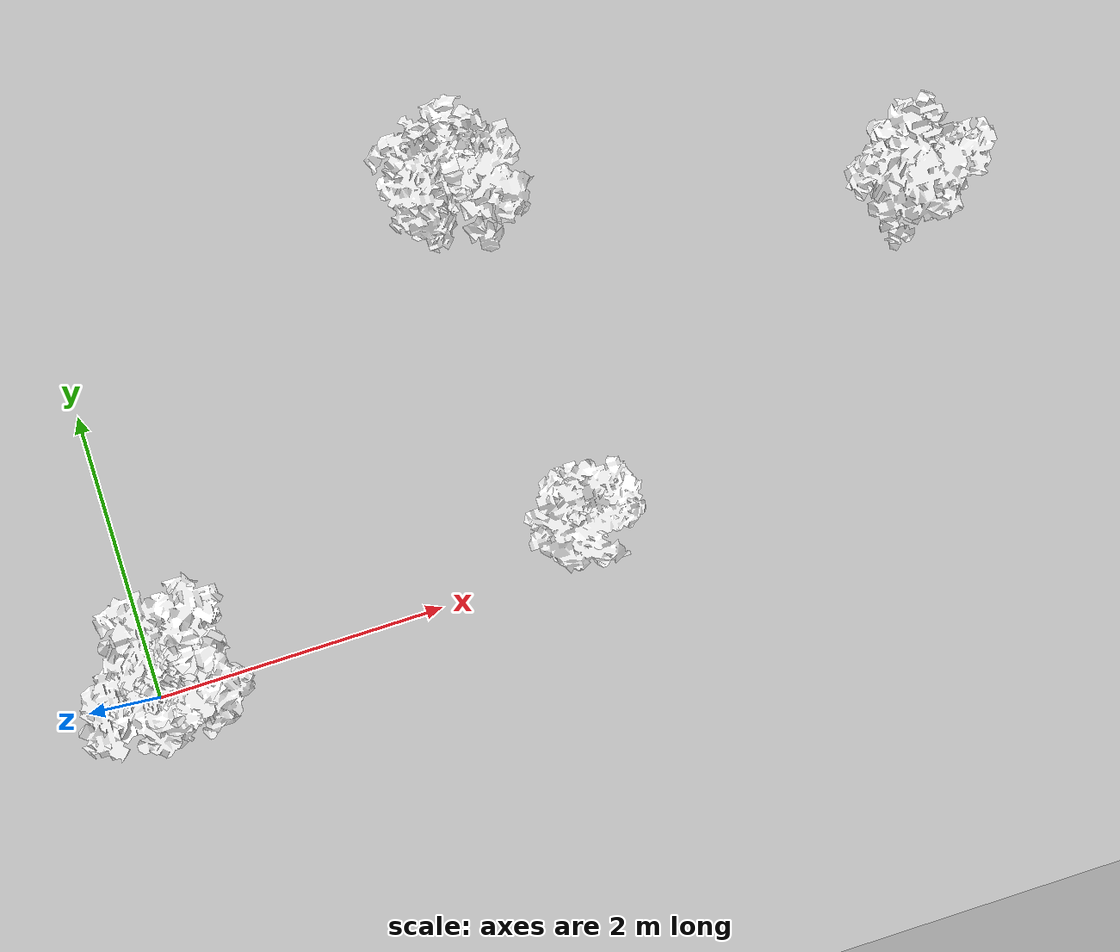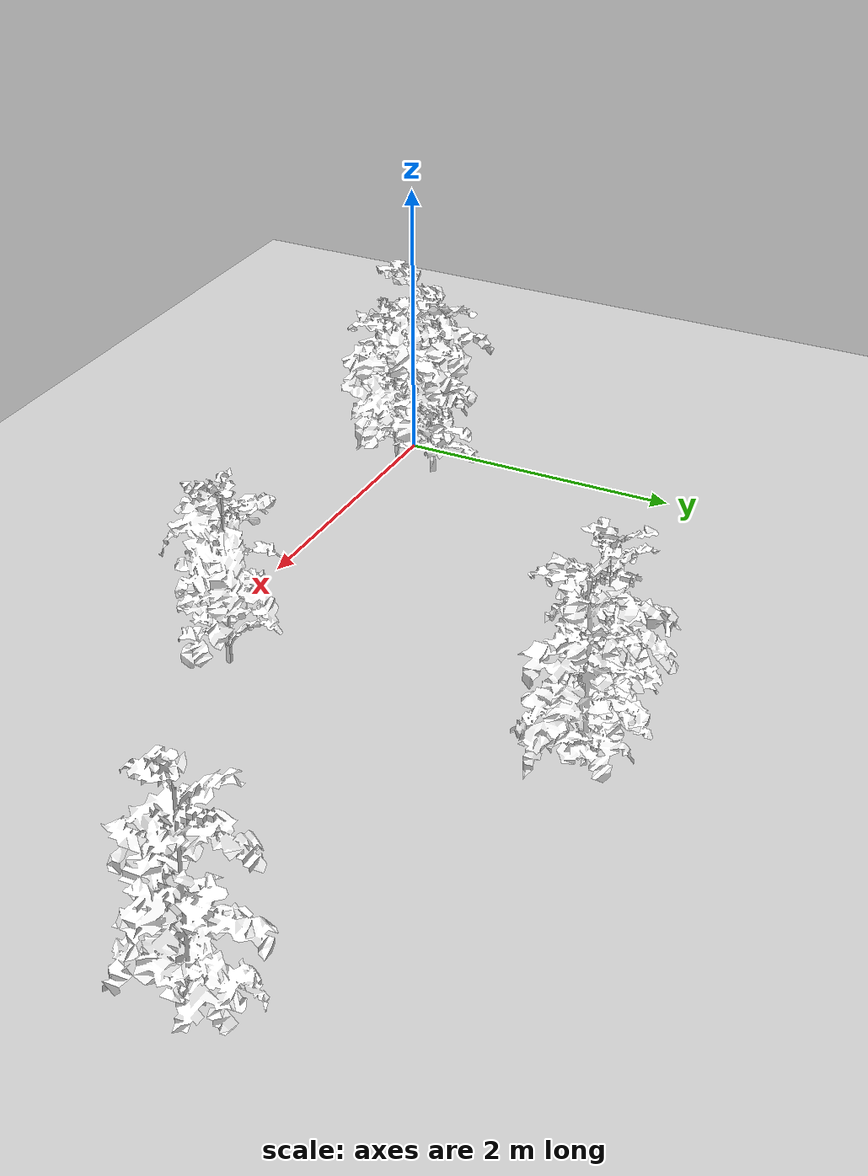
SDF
<sdf version="1.7">
 <world name="field">
  <physics name="1ms" type="ignored">
   <max_step_size>0.001</max_step_size>
   <real_time_factor>1</real_time_factor>
   <real_time_update_rate>1000</real_time_update_rate>
  </physics>
  <plugin name="ignition::gazebo::systems::Physics" filename="ignition-gazebo-physics-system"/>
  <plugin name="ignition::gazebo::systems::UserCommands" filename="ignition-gazebo-user-commands-system"/>
  <plugin name="ignition::gazebo::systems::SceneBroadcaster" filename="ignition-gazebo-scene-broadcaster-system"/>
  <plugin filename="ignition-gazebo-sensors-system" name="ignition::gazebo::systems::Sensors">
   <render_engine>ogre2</render_engine>
  </plugin>
  <scene><ambient>1 1 1 1</ambient><background>0.8 0.8 0.8 1</background><shadows>1</shadows></scene>
  <light name="sun" type="directional">
   <pose>0 0 10 0 -0 0</pose>
   <diffuse>0.8 0.8 0.8 1</diffuse>
   <specular>0.8 0.8 0.8 1</specular>
   <attenuation>
    <range>1000</range>
    <constant>0.9</constant>
    <linear>0.01</linear>
    <quadratic>0.001</quadratic>
   </attenuation>
   <direction>-0.5 0.1 -0.9</direction>
   <spot><inner_angle>0</inner_angle><outer_angle>0</outer_angle><falloff>0</falloff></spot>
  </light>
  <gravity>0 0 -9.8</gravity>
  <magnetic_field>6e-06 2.3e-05 -4.2e-05</magnetic_field>
  <atmosphere type="adiabatic"/>
  <include><uri>ground</uri><name>ground</name><pose>5.0 5.0 0 0 0 0</pose></include>
  <include><uri>tomato_0</uri><name>tomato_0</name></include>
  <include><uri>tomato_10</uri><name>tomato_10</name><pose>0.3 0.0 0 0 0 0</pose></include>
  <include><uri>tomato_11</uri><name>tomato_11</name><pose>0.3 0.3 0 0 0 0</pose></include>
  <include><uri>tomato_29</uri><name>tomato_29</name><pose>2.8 2.6999999999999997 0 0 0 0</pose></include>
  <include><uri>tomato_31</uri><name>tomato_31</name><pose>3.0999999999999996 0.3 0 0 0 0</pose></include>
  <include>
   <uri>tomato_39</uri>
   <name>tomato_39</name>
   <pose>3.0999999999999996 2.6999999999999997 0 0 0 0</pose>
  </include>
  <include>
   <uri>tomato_56</uri>
   <name>tomato_56</name>
   <pose>5.8999999999999995 1.7999999999999998 0 0 0 0</pose>
  </include>
 </world>
</sdf>

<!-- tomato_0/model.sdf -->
<sdf version="1.6">
  <model name="tomato_0">
    <static>true</static>
    <link name="link">
      <collision name="collision">
        <geometry>
          <box>
            <size>.1 .1 1</size>
          </box>
        </geometry>
      </collision>
      <visual name="branch">
        <geometry>
          <mesh>
            <uri>file://tomato_0/meshes/tomato.dae</uri>
            <submesh>
              <name>Branch1</name>
            </submesh>
          </mesh>
        </geometry>
        <material>
          <diffuse>1.0 1.0 1.0</diffuse>
          <pbr>
            <metal>
              <albedo_map>file://tomato_0/materials/textures/AG15brn1.png</albedo_map>
            </metal>
          </pbr>
        </material>
          <plugin filename="ignition-gazebo-label-system" name="ignition::gazebo::systems::Label">
            <label>1</label>
          </plugin>
      </visual>
      <visual name="leaf1">
        <geometry>
          <mesh>
            <uri>file://tomato_0/meshes/tomato.dae</uri>
            <submesh>
              <name>Leaf1</name>
            </submesh>
          </mesh>
        </geometry>
        <material>
          <diffuse>1.0 1.0 1.0</diffuse>
          <pbr>
            <metal>
              <albedo_map>file://tomato_0/materials/textures/AG15lef1.png</albedo_map>
            </metal>
          </pbr>
        </material>
          <plugin filename="ignition-gazebo-label-system" name="ignition::gazebo::systems::Label">
            <label>1</label>
          </plugin>
      </visual>
      <visual name="leaf2">
        <geometry>
          <mesh>
            <uri>file://tomato_0/meshes/tomato.dae</uri>
            <submesh>
              <name>Leaf2</name>
            </submesh>
          </mesh>
        </geometry>
        <material>
          <diffuse>1.0 1.0 1.0</diffuse>
          <pbr>
            <metal>
              <albedo_map>file://tomato_0/materials/textures/AG15lef2.png</albedo_map>
            </metal>
          </pbr>
        </material>
          <plugin filename="ignition-gazebo-label-system" name="ignition::gazebo::systems::Label">
            <label>1</label>
          </plugin>
      </visual>
      <visual name="fruit1">
        <geometry>
          <mesh>
            <uri>file://tomato_0/meshes/tomato.dae</uri>
            <submesh>
              <name>Fruit1</name>
            </submesh>
          </mesh>
        </geometry>
        <material>
          <diffuse>1.0 1.0 1.0</diffuse>
          <pbr>
            <metal>
              <albedo_map>file://tomato_0/materials/textures/AG15frt1.png</albedo_map>
            </metal>
          </pbr>
        </material>
          <plugin filename="ignition-gazebo-label-system" name="ignition::gazebo::systems::Label">
            <label>1</label>
          </plugin>
      </visual>
      <visual name="fruit2">
        <geometry>
          <mesh>
            <uri>file://tomato_0/meshes/tomato.dae</uri>
            <submesh>
              <name>Fruit2</name>
            </submesh>
          </mesh>
        </geometry>
        <material>
          <diffuse>1.0 1.0 1.0</diffuse>
          <pbr>
            <metal>
              <albedo_map>file://tomato_0/materials/textures/AG15frt2.png</albedo_map>
            </metal>
          </pbr>
        </material>
          <plugin filename="ignition-gazebo-label-system" name="ignition::gazebo::systems::Label">
            <label>1</label>
          </plugin>
      </visual>
      <visual name="fruit3">
        <geometry>
          <mesh>
            <uri>file://tomato_0/meshes/tomato.dae</uri>
            <submesh>
              <name>Fruit3</name>
            </submesh>
          </mesh>
        </geometry>
        <material>
          <diffuse>1.0 1.0 1.0</diffuse>
          <pbr>
            <metal>
              <albedo_map>file://tomato_0/materials/textures/AG15frt3.png</albedo_map>
            </metal>
          </pbr>
        </material>
      </visual>
          <plugin filename="ignition-gazebo-label-system" name="ignition::gazebo::systems::Label">
            <label>1</label>
          </plugin>
      <visual name="fruit4">
        <geometry>
          <mesh>
            <uri>file://tomato_0/meshes/tomato.dae</uri>
            <submesh>
              <name>Fruit4</name>
            </submesh>
          </mesh>
        </geometry>
        <material>
          <diffuse>1.0 1.0 1.0</diffuse>
          <pbr>
            <metal>
              <albedo_map>file://tomato_0/materials/textures/AG15frt4.png</albedo_map>
            </metal>
          </pbr>
        </material>
          <plugin filename="ignition-gazebo-label-system" name="ignition::gazebo::systems::Label">
            <label>1</label>
          </plugin>
      </visual>
      <visual name="blossom1">
        <geometry>
          <mesh>
            <uri>file://tomato_0/meshes/tomato.dae</uri>
            <submesh>
              <name>Blossom1</name>
            </submesh>
          </mesh>
        </geometry>
        <material>
          <diffuse>1.0 1.0 1.0</diffuse>
          <pbr>
            <metal>
              <albedo_map>file://tomato_0/materials/textures/AG15blo1.png</albedo_map>
            </metal>
          </pbr>
        </material>
          <plugin filename="ignition-gazebo-label-system" name="ignition::gazebo::systems::Label">
            <label>1</label>
          </plugin>
      </visual>
      <visual name="blossom2">
        <geometry>
          <mesh>
            <uri>file://tomato_0/meshes/tomato.dae</uri>
            <submesh>
              <name>Blossom2</name>
            </submesh>
          </mesh>
        </geometry>
        <material>
          <diffuse>1.0 1.0 1.0</diffuse>
          <pbr>
            <metal>
              <albedo_map>file://tomato_0/materials/textures/AG15blo2.png</albedo_map>
            </metal>
          </pbr>
        </material>
          <plugin filename="ignition-gazebo-label-system" name="ignition::gazebo::systems::Label">
            <label>1</label>
          </plugin>
      </visual>
      <visual name="blossom3">
        <geometry>
          <mesh>
            <uri>file://tomato_0/meshes/tomato.dae</uri>
            <submesh>
              <name>Blossom3</name>
            </submesh>
          </mesh>
        </geometry>
        <material>
          <diffuse>1.0 1.0 1.0</diffuse>
          <pbr>
            <metal>
              <albedo_map>file://tomato_0/materials/textures/AG15blo3.png</albedo_map>
            </metal>
          </pbr>
        </material>
          <plugin filename="ignition-gazebo-label-system" name="ignition::gazebo::systems::Label">
            <label>1</label>
          </plugin>
      </visual>
    </link>
  </model>
</sdf>

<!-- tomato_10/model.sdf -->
<sdf version="1.6">
  <model name="tomato_10">
    <static>true</static>
    <link name="link">
      <collision name="collision">
        <geometry>
          <box>
            <size>.1 .1 1</size>
          </box>
        </geometry>
      </collision>
      <visual name="branch">
        <geometry>
          <mesh>
            <uri>file://tomato_10/meshes/tomato.dae</uri>
            <submesh>
              <name>Branch1</name>
            </submesh>
          </mesh>
        </geometry>
        <material>
          <diffuse>1.0 1.0 1.0</diffuse>
          <pbr>
            <metal>
              <albedo_map>file://tomato_10/materials/textures/AG15brn1.png</albedo_map>
            </metal>
          </pbr>
        </material>
          <plugin filename="ignition-gazebo-label-system" name="ignition::gazebo::systems::Label">
            <label>1</label>
          </plugin>
      </visual>
      <visual name="leaf1">
        <geometry>
          <mesh>
            <uri>file://tomato_10/meshes/tomato.dae</uri>
            <submesh>
              <name>Leaf1</name>
            </submesh>
          </mesh>
        </geometry>
        <material>
          <diffuse>1.0 1.0 1.0</diffuse>
          <pbr>
            <metal>
              <albedo_map>file://tomato_10/materials/textures/AG15lef1.png</albedo_map>
            </metal>
          </pbr>
        </material>
          <plugin filename="ignition-gazebo-label-system" name="ignition::gazebo::systems::Label">
            <label>1</label>
          </plugin>
      </visual>
      <visual name="leaf2">
        <geometry>
          <mesh>
            <uri>file://tomato_10/meshes/tomato.dae</uri>
            <submesh>
              <name>Leaf2</name>
            </submesh>
          </mesh>
        </geometry>
        <material>
          <diffuse>1.0 1.0 1.0</diffuse>
          <pbr>
            <metal>
              <albedo_map>file://tomato_10/materials/textures/AG15lef2.png</albedo_map>
            </metal>
          </pbr>
        </material>
          <plugin filename="ignition-gazebo-label-system" name="ignition::gazebo::systems::Label">
            <label>1</label>
          </plugin>
      </visual>
      <visual name="fruit1">
        <geometry>
          <mesh>
            <uri>file://tomato_10/meshes/tomato.dae</uri>
            <submesh>
              <name>Fruit1</name>
            </submesh>
          </mesh>
        </geometry>
        <material>
          <diffuse>1.0 1.0 1.0</diffuse>
          <pbr>
            <metal>
              <albedo_map>file://tomato_10/materials/textures/AG15frt1.png</albedo_map>
            </metal>
          </pbr>
        </material>
          <plugin filename="ignition-gazebo-label-system" name="ignition::gazebo::systems::Label">
            <label>1</label>
          </plugin>
      </visual>
      <visual name="fruit2">
        <geometry>
          <mesh>
            <uri>file://tomato_10/meshes/tomato.dae</uri>
            <submesh>
              <name>Fruit2</name>
            </submesh>
          </mesh>
        </geometry>
        <material>
          <diffuse>1.0 1.0 1.0</diffuse>
          <pbr>
            <metal>
              <albedo_map>file://tomato_10/materials/textures/AG15frt2.png</albedo_map>
            </metal>
          </pbr>
        </material>
          <plugin filename="ignition-gazebo-label-system" name="ignition::gazebo::systems::Label">
            <label>1</label>
          </plugin>
      </visual>
      <visual name="fruit3">
        <geometry>
          <mesh>
            <uri>file://tomato_10/meshes/tomato.dae</uri>
            <submesh>
              <name>Fruit3</name>
            </submesh>
          </mesh>
        </geometry>
        <material>
          <diffuse>1.0 1.0 1.0</diffuse>
          <pbr>
            <metal>
              <albedo_map>file://tomato_10/materials/textures/AG15frt3.png</albedo_map>
            </metal>
          </pbr>
        </material>
      </visual>
          <plugin filename="ignition-gazebo-label-system" name="ignition::gazebo::systems::Label">
            <label>1</label>
          </plugin>
      <visual name="fruit4">
        <geometry>
          <mesh>
            <uri>file://tomato_10/meshes/tomato.dae</uri>
            <submesh>
              <name>Fruit4</name>
            </submesh>
          </mesh>
        </geometry>
        <material>
          <diffuse>1.0 1.0 1.0</diffuse>
          <pbr>
            <metal>
              <albedo_map>file://tomato_10/materials/textures/AG15frt4.png</albedo_map>
            </metal>
          </pbr>
        </material>
          <plugin filename="ignition-gazebo-label-system" name="ignition::gazebo::systems::Label">
            <label>1</label>
          </plugin>
      </visual>
      <visual name="blossom1">
        <geometry>
          <mesh>
            <uri>file://tomato_10/meshes/tomato.dae</uri>
            <submesh>
              <name>Blossom1</name>
            </submesh>
          </mesh>
        </geometry>
        <material>
          <diffuse>1.0 1.0 1.0</diffuse>
          <pbr>
            <metal>
              <albedo_map>file://tomato_10/materials/textures/AG15blo1.png</albedo_map>
            </metal>
          </pbr>
        </material>
          <plugin filename="ignition-gazebo-label-system" name="ignition::gazebo::systems::Label">
            <label>1</label>
          </plugin>
      </visual>
      <visual name="blossom2">
        <geometry>
          <mesh>
            <uri>file://tomato_10/meshes/tomato.dae</uri>
            <submesh>
              <name>Blossom2</name>
            </submesh>
          </mesh>
        </geometry>
        <material>
          <diffuse>1.0 1.0 1.0</diffuse>
          <pbr>
            <metal>
              <albedo_map>file://tomato_10/materials/textures/AG15blo2.png</albedo_map>
            </metal>
          </pbr>
        </material>
          <plugin filename="ignition-gazebo-label-system" name="ignition::gazebo::systems::Label">
            <label>1</label>
          </plugin>
      </visual>
      <visual name="blossom3">
        <geometry>
          <mesh>
            <uri>file://tomato_10/meshes/tomato.dae</uri>
            <submesh>
              <name>Blossom3</name>
            </submesh>
          </mesh>
        </geometry>
        <material>
          <diffuse>1.0 1.0 1.0</diffuse>
          <pbr>
            <metal>
              <albedo_map>file://tomato_10/materials/textures/AG15blo3.png</albedo_map>
            </metal>
          </pbr>
        </material>
          <plugin filename="ignition-gazebo-label-system" name="ignition::gazebo::systems::Label">
            <label>1</label>
          </plugin>
      </visual>
    </link>
  </model>
</sdf>

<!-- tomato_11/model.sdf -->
<sdf version="1.6">
  <model name="tomato_11">
    <static>true</static>
    <link name="link">
      <collision name="collision">
        <geometry>
          <box>
            <size>.1 .1 1</size>
          </box>
        </geometry>
      </collision>
      <visual name="branch">
        <geometry>
          <mesh>
            <uri>file://tomato_11/meshes/tomato.dae</uri>
            <submesh>
              <name>Branch1</name>
            </submesh>
          </mesh>
        </geometry>
        <material>
          <diffuse>1.0 1.0 1.0</diffuse>
          <pbr>
            <metal>
              <albedo_map>file://tomato_11/materials/textures/AG15brn1.png</albedo_map>
            </metal>
          </pbr>
        </material>
          <plugin filename="ignition-gazebo-label-system" name="ignition::gazebo::systems::Label">
            <label>1</label>
          </plugin>
      </visual>
      <visual name="leaf1">
        <geometry>
          <mesh>
            <uri>file://tomato_11/meshes/tomato.dae</uri>
            <submesh>
              <name>Leaf1</name>
            </submesh>
          </mesh>
        </geometry>
        <material>
          <diffuse>1.0 1.0 1.0</diffuse>
          <pbr>
            <metal>
              <albedo_map>file://tomato_11/materials/textures/AG15lef1.png</albedo_map>
            </metal>
          </pbr>
        </material>
          <plugin filename="ignition-gazebo-label-system" name="ignition::gazebo::systems::Label">
            <label>1</label>
          </plugin>
      </visual>
      <visual name="leaf2">
        <geometry>
          <mesh>
            <uri>file://tomato_11/meshes/tomato.dae</uri>
            <submesh>
              <name>Leaf2</name>
            </submesh>
          </mesh>
        </geometry>
        <material>
          <diffuse>1.0 1.0 1.0</diffuse>
          <pbr>
            <metal>
              <albedo_map>file://tomato_11/materials/textures/AG15lef2.png</albedo_map>
            </metal>
          </pbr>
        </material>
          <plugin filename="ignition-gazebo-label-system" name="ignition::gazebo::systems::Label">
            <label>1</label>
          </plugin>
      </visual>
      <visual name="fruit1">
        <geometry>
          <mesh>
            <uri>file://tomato_11/meshes/tomato.dae</uri>
            <submesh>
              <name>Fruit1</name>
            </submesh>
          </mesh>
        </geometry>
        <material>
          <diffuse>1.0 1.0 1.0</diffuse>
          <pbr>
            <metal>
              <albedo_map>file://tomato_11/materials/textures/AG15frt1.png</albedo_map>
            </metal>
          </pbr>
        </material>
          <plugin filename="ignition-gazebo-label-system" name="ignition::gazebo::systems::Label">
            <label>1</label>
          </plugin>
      </visual>
      <visual name="fruit2">
        <geometry>
          <mesh>
            <uri>file://tomato_11/meshes/tomato.dae</uri>
            <submesh>
              <name>Fruit2</name>
            </submesh>
          </mesh>
        </geometry>
        <material>
          <diffuse>1.0 1.0 1.0</diffuse>
          <pbr>
            <metal>
              <albedo_map>file://tomato_11/materials/textures/AG15frt2.png</albedo_map>
            </metal>
          </pbr>
        </material>
          <plugin filename="ignition-gazebo-label-system" name="ignition::gazebo::systems::Label">
            <label>1</label>
          </plugin>
      </visual>
      <visual name="fruit3">
        <geometry>
          <mesh>
            <uri>file://tomato_11/meshes/tomato.dae</uri>
            <submesh>
              <name>Fruit3</name>
            </submesh>
          </mesh>
        </geometry>
        <material>
          <diffuse>1.0 1.0 1.0</diffuse>
          <pbr>
            <metal>
              <albedo_map>file://tomato_11/materials/textures/AG15frt3.png</albedo_map>
            </metal>
          </pbr>
        </material>
      </visual>
          <plugin filename="ignition-gazebo-label-system" name="ignition::gazebo::systems::Label">
            <label>1</label>
          </plugin>
      <visual name="fruit4">
        <geometry>
          <mesh>
            <uri>file://tomato_11/meshes/tomato.dae</uri>
            <submesh>
              <name>Fruit4</name>
            </submesh>
          </mesh>
        </geometry>
        <material>
          <diffuse>1.0 1.0 1.0</diffuse>
          <pbr>
            <metal>
              <albedo_map>file://tomato_11/materials/textures/AG15frt4.png</albedo_map>
            </metal>
          </pbr>
        </material>
          <plugin filename="ignition-gazebo-label-system" name="ignition::gazebo::systems::Label">
            <label>1</label>
          </plugin>
      </visual>
      <visual name="blossom1">
        <geometry>
          <mesh>
            <uri>file://tomato_11/meshes/tomato.dae</uri>
            <submesh>
              <name>Blossom1</name>
            </submesh>
          </mesh>
        </geometry>
        <material>
          <diffuse>1.0 1.0 1.0</diffuse>
          <pbr>
            <metal>
              <albedo_map>file://tomato_11/materials/textures/AG15blo1.png</albedo_map>
            </metal>
          </pbr>
        </material>
          <plugin filename="ignition-gazebo-label-system" name="ignition::gazebo::systems::Label">
            <label>1</label>
          </plugin>
      </visual>
      <visual name="blossom2">
        <geometry>
          <mesh>
            <uri>file://tomato_11/meshes/tomato.dae</uri>
            <submesh>
              <name>Blossom2</name>
            </submesh>
          </mesh>
        </geometry>
        <material>
          <diffuse>1.0 1.0 1.0</diffuse>
          <pbr>
            <metal>
              <albedo_map>file://tomato_11/materials/textures/AG15blo2.png</albedo_map>
            </metal>
          </pbr>
        </material>
          <plugin filename="ignition-gazebo-label-system" name="ignition::gazebo::systems::Label">
            <label>1</label>
          </plugin>
      </visual>
      <visual name="blossom3">
        <geometry>
          <mesh>
            <uri>file://tomato_11/meshes/tomato.dae</uri>
            <submesh>
              <name>Blossom3</name>
            </submesh>
          </mesh>
        </geometry>
        <material>
          <diffuse>1.0 1.0 1.0</diffuse>
          <pbr>
            <metal>
              <albedo_map>file://tomato_11/materials/textures/AG15blo3.png</albedo_map>
            </metal>
          </pbr>
        </material>
          <plugin filename="ignition-gazebo-label-system" name="ignition::gazebo::systems::Label">
            <label>1</label>
          </plugin>
      </visual>
    </link>
  </model>
</sdf>

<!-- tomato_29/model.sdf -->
<sdf version="1.6">
  <model name="tomato_29">
    <static>true</static>
    <link name="link">
      <collision name="collision">
        <geometry>
          <box>
            <size>.1 .1 1</size>
          </box>
        </geometry>
      </collision>
      <visual name="branch">
        <geometry>
          <mesh>
            <uri>file://tomato_29/meshes/tomato.dae</uri>
            <submesh>
              <name>Branch1</name>
            </submesh>
          </mesh>
        </geometry>
        <material>
          <diffuse>1.0 1.0 1.0</diffuse>
          <pbr>
            <metal>
              <albedo_map>file://tomato_29/materials/textures/AG15brn1.png</albedo_map>
            </metal>
          </pbr>
        </material>
          <plugin filename="ignition-gazebo-label-system" name="ignition::gazebo::systems::Label">
            <label>2</label>
          </plugin>
      </visual>
      <visual name="leaf1">
        <geometry>
          <mesh>
            <uri>file://tomato_29/meshes/tomato.dae</uri>
            <submesh>
              <name>Leaf1</name>
            </submesh>
          </mesh>
        </geometry>
        <material>
          <diffuse>1.0 1.0 1.0</diffuse>
          <pbr>
            <metal>
              <albedo_map>file://tomato_29/materials/textures/AG15lef1.png</albedo_map>
            </metal>
          </pbr>
        </material>
          <plugin filename="ignition-gazebo-label-system" name="ignition::gazebo::systems::Label">
            <label>3</label>
          </plugin>
      </visual>
      <visual name="leaf2">
        <geometry>
          <mesh>
            <uri>file://tomato_29/meshes/tomato.dae</uri>
            <submesh>
              <name>Leaf2</name>
            </submesh>
          </mesh>
        </geometry>
        <material>
          <diffuse>1.0 1.0 1.0</diffuse>
          <pbr>
            <metal>
              <albedo_map>file://tomato_29/materials/textures/AG15lef2.png</albedo_map>
            </metal>
          </pbr>
        </material>
          <plugin filename="ignition-gazebo-label-system" name="ignition::gazebo::systems::Label">
            <label>3</label>
          </plugin>
      </visual>
      <visual name="fruit1">
        <geometry>
          <mesh>
            <uri>file://tomato_29/meshes/tomato.dae</uri>
            <submesh>
              <name>Fruit1</name>
            </submesh>
          </mesh>
        </geometry>
        <material>
          <diffuse>1.0 1.0 1.0</diffuse>
          <pbr>
            <metal>
              <albedo_map>file://tomato_29/materials/textures/AG15frt1.png</albedo_map>
            </metal>
          </pbr>
        </material>
          <plugin filename="ignition-gazebo-label-system" name="ignition::gazebo::systems::Label">
            <label>4</label>
          </plugin>
      </visual>
      <visual name="fruit2">
        <geometry>
          <mesh>
            <uri>file://tomato_29/meshes/tomato.dae</uri>
            <submesh>
              <name>Fruit2</name>
            </submesh>
          </mesh>
        </geometry>
        <material>
          <diffuse>1.0 1.0 1.0</diffuse>
          <pbr>
            <metal>
              <albedo_map>file://tomato_29/materials/textures/AG15frt2.png</albedo_map>
            </metal>
          </pbr>
        </material>
          <plugin filename="ignition-gazebo-label-system" name="ignition::gazebo::systems::Label">
            <label>4</label>
          </plugin>
      </visual>
      <visual name="fruit3">
        <geometry>
          <mesh>
            <uri>file://tomato_29/meshes/tomato.dae</uri>
            <submesh>
              <name>Fruit3</name>
            </submesh>
          </mesh>
        </geometry>
        <material>
          <diffuse>1.0 1.0 1.0</diffuse>
          <pbr>
            <metal>
              <albedo_map>file://tomato_29/materials/textures/AG15frt3.png</albedo_map>
            </metal>
          </pbr>
        </material>
      </visual>
          <plugin filename="ignition-gazebo-label-system" name="ignition::gazebo::systems::Label">
            <label>4</label>
          </plugin>
      <visual name="fruit4">
        <geometry>
          <mesh>
            <uri>file://tomato_29/meshes/tomato.dae</uri>
            <submesh>
              <name>Fruit4</name>
            </submesh>
          </mesh>
        </geometry>
        <material>
          <diffuse>1.0 1.0 1.0</diffuse>
          <pbr>
            <metal>
              <albedo_map>file://tomato_29/materials/textures/AG15frt4.png</albedo_map>
            </metal>
          </pbr>
        </material>
          <plugin filename="ignition-gazebo-label-system" name="ignition::gazebo::systems::Label">
            <label>4</label>
          </plugin>
      </visual>
      <visual name="blossom1">
        <geometry>
          <mesh>
            <uri>file://tomato_29/meshes/tomato.dae</uri>
            <submesh>
              <name>Blossom1</name>
            </submesh>
          </mesh>
        </geometry>
        <material>
          <diffuse>1.0 1.0 1.0</diffuse>
          <pbr>
            <metal>
              <albedo_map>file://tomato_29/materials/textures/AG15blo1.png</albedo_map>
            </metal>
          </pbr>
        </material>
          <plugin filename="ignition-gazebo-label-system" name="ignition::gazebo::systems::Label">
            <label>5</label>
          </plugin>
      </visual>
      <visual name="blossom2">
        <geometry>
          <mesh>
            <uri>file://tomato_29/meshes/tomato.dae</uri>
            <submesh>
              <name>Blossom2</name>
            </submesh>
          </mesh>
        </geometry>
        <material>
          <diffuse>1.0 1.0 1.0</diffuse>
          <pbr>
            <metal>
              <albedo_map>file://tomato_29/materials/textures/AG15blo2.png</albedo_map>
            </metal>
          </pbr>
        </material>
          <plugin filename="ignition-gazebo-label-system" name="ignition::gazebo::systems::Label">
            <label>5</label>
          </plugin>
      </visual>
      <visual name="blossom3">
        <geometry>
          <mesh>
            <uri>file://tomato_29/meshes/tomato.dae</uri>
            <submesh>
              <name>Blossom3</name>
            </submesh>
          </mesh>
        </geometry>
        <material>
          <diffuse>1.0 1.0 1.0</diffuse>
          <pbr>
            <metal>
              <albedo_map>file://tomato_29/materials/textures/AG15blo3.png</albedo_map>
            </metal>
          </pbr>
        </material>
          <plugin filename="ignition-gazebo-label-system" name="ignition::gazebo::systems::Label">
            <label>5</label>
          </plugin>
      </visual>
    </link>
  </model>
</sdf>

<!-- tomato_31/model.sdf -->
<sdf version="1.6">
  <model name="tomato_31">
    <static>true</static>
    <link name="link">
      <collision name="collision">
        <geometry>
          <box>
            <size>.1 .1 1</size>
          </box>
        </geometry>
      </collision>
      <visual name="branch">
        <geometry>
          <mesh>
            <uri>file://tomato_31/meshes/tomato.dae</uri>
            <submesh>
              <name>Branch1</name>
            </submesh>
          </mesh>
        </geometry>
        <material>
          <diffuse>1.0 1.0 1.0</diffuse>
          <pbr>
            <metal>
              <albedo_map>file://tomato_31/materials/textures/AG15brn1.png</albedo_map>
            </metal>
          </pbr>
        </material>
          <plugin filename="ignition-gazebo-label-system" name="ignition::gazebo::systems::Label">
            <label>2</label>
          </plugin>
      </visual>
      <visual name="leaf1">
        <geometry>
          <mesh>
            <uri>file://tomato_31/meshes/tomato.dae</uri>
            <submesh>
              <name>Leaf1</name>
            </submesh>
          </mesh>
        </geometry>
        <material>
          <diffuse>1.0 1.0 1.0</diffuse>
          <pbr>
            <metal>
              <albedo_map>file://tomato_31/materials/textures/AG15lef1.png</albedo_map>
            </metal>
          </pbr>
        </material>
          <plugin filename="ignition-gazebo-label-system" name="ignition::gazebo::systems::Label">
            <label>3</label>
          </plugin>
      </visual>
      <visual name="leaf2">
        <geometry>
          <mesh>
            <uri>file://tomato_31/meshes/tomato.dae</uri>
            <submesh>
              <name>Leaf2</name>
            </submesh>
          </mesh>
        </geometry>
        <material>
          <diffuse>1.0 1.0 1.0</diffuse>
          <pbr>
            <metal>
              <albedo_map>file://tomato_31/materials/textures/AG15lef2.png</albedo_map>
            </metal>
          </pbr>
        </material>
          <plugin filename="ignition-gazebo-label-system" name="ignition::gazebo::systems::Label">
            <label>3</label>
          </plugin>
      </visual>
      <visual name="fruit1">
        <geometry>
          <mesh>
            <uri>file://tomato_31/meshes/tomato.dae</uri>
            <submesh>
              <name>Fruit1</name>
            </submesh>
          </mesh>
        </geometry>
        <material>
          <diffuse>1.0 1.0 1.0</diffuse>
          <pbr>
            <metal>
              <albedo_map>file://tomato_31/materials/textures/AG15frt1.png</albedo_map>
            </metal>
          </pbr>
        </material>
          <plugin filename="ignition-gazebo-label-system" name="ignition::gazebo::systems::Label">
            <label>4</label>
          </plugin>
      </visual>
      <visual name="fruit2">
        <geometry>
          <mesh>
            <uri>file://tomato_31/meshes/tomato.dae</uri>
            <submesh>
              <name>Fruit2</name>
            </submesh>
          </mesh>
        </geometry>
        <material>
          <diffuse>1.0 1.0 1.0</diffuse>
          <pbr>
            <metal>
              <albedo_map>file://tomato_31/materials/textures/AG15frt2.png</albedo_map>
            </metal>
          </pbr>
        </material>
          <plugin filename="ignition-gazebo-label-system" name="ignition::gazebo::systems::Label">
            <label>4</label>
          </plugin>
      </visual>
      <visual name="fruit3">
        <geometry>
          <mesh>
            <uri>file://tomato_31/meshes/tomato.dae</uri>
            <submesh>
              <name>Fruit3</name>
            </submesh>
          </mesh>
        </geometry>
        <material>
          <diffuse>1.0 1.0 1.0</diffuse>
          <pbr>
            <metal>
              <albedo_map>file://tomato_31/materials/textures/AG15frt3.png</albedo_map>
            </metal>
          </pbr>
        </material>
      </visual>
          <plugin filename="ignition-gazebo-label-system" name="ignition::gazebo::systems::Label">
            <label>4</label>
          </plugin>
      <visual name="fruit4">
        <geometry>
          <mesh>
            <uri>file://tomato_31/meshes/tomato.dae</uri>
            <submesh>
              <name>Fruit4</name>
            </submesh>
          </mesh>
        </geometry>
        <material>
          <diffuse>1.0 1.0 1.0</diffuse>
          <pbr>
            <metal>
              <albedo_map>file://tomato_31/materials/textures/AG15frt4.png</albedo_map>
            </metal>
          </pbr>
        </material>
          <plugin filename="ignition-gazebo-label-system" name="ignition::gazebo::systems::Label">
            <label>4</label>
          </plugin>
      </visual>
      <visual name="blossom1">
        <geometry>
          <mesh>
            <uri>file://tomato_31/meshes/tomato.dae</uri>
            <submesh>
              <name>Blossom1</name>
            </submesh>
          </mesh>
        </geometry>
        <material>
          <diffuse>1.0 1.0 1.0</diffuse>
          <pbr>
            <metal>
              <albedo_map>file://tomato_31/materials/textures/AG15blo1.png</albedo_map>
            </metal>
          </pbr>
        </material>
          <plugin filename="ignition-gazebo-label-system" name="ignition::gazebo::systems::Label">
            <label>5</label>
          </plugin>
      </visual>
      <visual name="blossom2">
        <geometry>
          <mesh>
            <uri>file://tomato_31/meshes/tomato.dae</uri>
            <submesh>
              <name>Blossom2</name>
            </submesh>
          </mesh>
        </geometry>
        <material>
          <diffuse>1.0 1.0 1.0</diffuse>
          <pbr>
            <metal>
              <albedo_map>file://tomato_31/materials/textures/AG15blo2.png</albedo_map>
            </metal>
          </pbr>
        </material>
          <plugin filename="ignition-gazebo-label-system" name="ignition::gazebo::systems::Label">
            <label>5</label>
          </plugin>
      </visual>
      <visual name="blossom3">
        <geometry>
          <mesh>
            <uri>file://tomato_31/meshes/tomato.dae</uri>
            <submesh>
              <name>Blossom3</name>
            </submesh>
          </mesh>
        </geometry>
        <material>
          <diffuse>1.0 1.0 1.0</diffuse>
          <pbr>
            <metal>
              <albedo_map>file://tomato_31/materials/textures/AG15blo3.png</albedo_map>
            </metal>
          </pbr>
        </material>
          <plugin filename="ignition-gazebo-label-system" name="ignition::gazebo::systems::Label">
            <label>5</label>
          </plugin>
      </visual>
    </link>
  </model>
</sdf>

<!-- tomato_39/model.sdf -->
<sdf version="1.6">
  <model name="tomato_39">
    <static>true</static>
    <link name="link">
      <collision name="collision">
        <geometry>
          <box>
            <size>.1 .1 1</size>
          </box>
        </geometry>
      </collision>
      <visual name="branch">
        <geometry>
          <mesh>
            <uri>file://tomato_39/meshes/tomato.dae</uri>
            <submesh>
              <name>Branch1</name>
            </submesh>
          </mesh>
        </geometry>
        <material>
          <diffuse>1.0 1.0 1.0</diffuse>
          <pbr>
            <metal>
              <albedo_map>file://tomato_39/materials/textures/AG15brn1.png</albedo_map>
            </metal>
          </pbr>
        </material>
          <plugin filename="ignition-gazebo-label-system" name="ignition::gazebo::systems::Label">
            <label>2</label>
          </plugin>
      </visual>
      <visual name="leaf1">
        <geometry>
          <mesh>
            <uri>file://tomato_39/meshes/tomato.dae</uri>
            <submesh>
              <name>Leaf1</name>
            </submesh>
          </mesh>
        </geometry>
        <material>
          <diffuse>1.0 1.0 1.0</diffuse>
          <pbr>
            <metal>
              <albedo_map>file://tomato_39/materials/textures/AG15lef1.png</albedo_map>
            </metal>
          </pbr>
        </material>
          <plugin filename="ignition-gazebo-label-system" name="ignition::gazebo::systems::Label">
            <label>3</label>
          </plugin>
      </visual>
      <visual name="leaf2">
        <geometry>
          <mesh>
            <uri>file://tomato_39/meshes/tomato.dae</uri>
            <submesh>
              <name>Leaf2</name>
            </submesh>
          </mesh>
        </geometry>
        <material>
          <diffuse>1.0 1.0 1.0</diffuse>
          <pbr>
            <metal>
              <albedo_map>file://tomato_39/materials/textures/AG15lef2.png</albedo_map>
            </metal>
          </pbr>
        </material>
          <plugin filename="ignition-gazebo-label-system" name="ignition::gazebo::systems::Label">
            <label>3</label>
          </plugin>
      </visual>
      <visual name="fruit1">
        <geometry>
          <mesh>
            <uri>file://tomato_39/meshes/tomato.dae</uri>
            <submesh>
              <name>Fruit1</name>
            </submesh>
          </mesh>
        </geometry>
        <material>
          <diffuse>1.0 1.0 1.0</diffuse>
          <pbr>
            <metal>
              <albedo_map>file://tomato_39/materials/textures/AG15frt1.png</albedo_map>
            </metal>
          </pbr>
        </material>
          <plugin filename="ignition-gazebo-label-system" name="ignition::gazebo::systems::Label">
            <label>4</label>
          </plugin>
      </visual>
      <visual name="fruit2">
        <geometry>
          <mesh>
            <uri>file://tomato_39/meshes/tomato.dae</uri>
            <submesh>
              <name>Fruit2</name>
            </submesh>
          </mesh>
        </geometry>
        <material>
          <diffuse>1.0 1.0 1.0</diffuse>
          <pbr>
            <metal>
              <albedo_map>file://tomato_39/materials/textures/AG15frt2.png</albedo_map>
            </metal>
          </pbr>
        </material>
          <plugin filename="ignition-gazebo-label-system" name="ignition::gazebo::systems::Label">
            <label>4</label>
          </plugin>
      </visual>
      <visual name="fruit3">
        <geometry>
          <mesh>
            <uri>file://tomato_39/meshes/tomato.dae</uri>
            <submesh>
              <name>Fruit3</name>
            </submesh>
          </mesh>
        </geometry>
        <material>
          <diffuse>1.0 1.0 1.0</diffuse>
          <pbr>
            <metal>
              <albedo_map>file://tomato_39/materials/textures/AG15frt3.png</albedo_map>
            </metal>
          </pbr>
        </material>
      </visual>
          <plugin filename="ignition-gazebo-label-system" name="ignition::gazebo::systems::Label">
            <label>4</label>
          </plugin>
      <visual name="fruit4">
        <geometry>
          <mesh>
            <uri>file://tomato_39/meshes/tomato.dae</uri>
            <submesh>
              <name>Fruit4</name>
            </submesh>
          </mesh>
        </geometry>
        <material>
          <diffuse>1.0 1.0 1.0</diffuse>
          <pbr>
            <metal>
              <albedo_map>file://tomato_39/materials/textures/AG15frt4.png</albedo_map>
            </metal>
          </pbr>
        </material>
          <plugin filename="ignition-gazebo-label-system" name="ignition::gazebo::systems::Label">
            <label>4</label>
          </plugin>
      </visual>
      <visual name="blossom1">
        <geometry>
          <mesh>
            <uri>file://tomato_39/meshes/tomato.dae</uri>
            <submesh>
              <name>Blossom1</name>
            </submesh>
          </mesh>
        </geometry>
        <material>
          <diffuse>1.0 1.0 1.0</diffuse>
          <pbr>
            <metal>
              <albedo_map>file://tomato_39/materials/textures/AG15blo1.png</albedo_map>
            </metal>
          </pbr>
        </material>
          <plugin filename="ignition-gazebo-label-system" name="ignition::gazebo::systems::Label">
            <label>5</label>
          </plugin>
      </visual>
      <visual name="blossom2">
        <geometry>
          <mesh>
            <uri>file://tomato_39/meshes/tomato.dae</uri>
            <submesh>
              <name>Blossom2</name>
            </submesh>
          </mesh>
        </geometry>
        <material>
          <diffuse>1.0 1.0 1.0</diffuse>
          <pbr>
            <metal>
              <albedo_map>file://tomato_39/materials/textures/AG15blo2.png</albedo_map>
            </metal>
          </pbr>
        </material>
          <plugin filename="ignition-gazebo-label-system" name="ignition::gazebo::systems::Label">
            <label>5</label>
          </plugin>
      </visual>
      <visual name="blossom3">
        <geometry>
          <mesh>
            <uri>file://tomato_39/meshes/tomato.dae</uri>
            <submesh>
              <name>Blossom3</name>
            </submesh>
          </mesh>
        </geometry>
        <material>
          <diffuse>1.0 1.0 1.0</diffuse>
          <pbr>
            <metal>
              <albedo_map>file://tomato_39/materials/textures/AG15blo3.png</albedo_map>
            </metal>
          </pbr>
        </material>
          <plugin filename="ignition-gazebo-label-system" name="ignition::gazebo::systems::Label">
            <label>5</label>
          </plugin>
      </visual>
    </link>
  </model>
</sdf>

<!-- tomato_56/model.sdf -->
<sdf version="1.6">
  <model name="tomato_56">
    <static>true</static>
    <link name="link">
      <collision name="collision">
        <geometry>
          <box>
            <size>.1 .1 1</size>
          </box>
        </geometry>
      </collision>
      <visual name="branch">
        <geometry>
          <mesh>
            <uri>file://tomato_56/meshes/tomato.dae</uri>
            <submesh>
              <name>Branch1</name>
            </submesh>
          </mesh>
        </geometry>
        <material>
          <diffuse>1.0 1.0 1.0</diffuse>
          <pbr>
            <metal>
              <albedo_map>file://tomato_56/materials/textures/AG15brn1.png</albedo_map>
            </metal>
          </pbr>
        </material>
          <plugin filename="ignition-gazebo-label-system" name="ignition::gazebo::systems::Label">
            <label>2</label>
          </plugin>
      </visual>
      <visual name="leaf1">
        <geometry>
          <mesh>
            <uri>file://tomato_56/meshes/tomato.dae</uri>
            <submesh>
              <name>Leaf1</name>
            </submesh>
          </mesh>
        </geometry>
        <material>
          <diffuse>1.0 1.0 1.0</diffuse>
          <pbr>
            <metal>
              <albedo_map>file://tomato_56/materials/textures/AG15lef1.png</albedo_map>
            </metal>
          </pbr>
        </material>
          <plugin filename="ignition-gazebo-label-system" name="ignition::gazebo::systems::Label">
            <label>3</label>
          </plugin>
      </visual>
      <visual name="leaf2">
        <geometry>
          <mesh>
            <uri>file://tomato_56/meshes/tomato.dae</uri>
            <submesh>
              <name>Leaf2</name>
            </submesh>
          </mesh>
        </geometry>
        <material>
          <diffuse>1.0 1.0 1.0</diffuse>
          <pbr>
            <metal>
              <albedo_map>file://tomato_56/materials/textures/AG15lef2.png</albedo_map>
            </metal>
          </pbr>
        </material>
          <plugin filename="ignition-gazebo-label-system" name="ignition::gazebo::systems::Label">
            <label>3</label>
          </plugin>
      </visual>
      <visual name="fruit1">
        <geometry>
          <mesh>
            <uri>file://tomato_56/meshes/tomato.dae</uri>
            <submesh>
              <name>Fruit1</name>
            </submesh>
          </mesh>
        </geometry>
        <material>
          <diffuse>1.0 1.0 1.0</diffuse>
          <pbr>
            <metal>
              <albedo_map>file://tomato_56/materials/textures/AG15frt1.png</albedo_map>
            </metal>
          </pbr>
        </material>
          <plugin filename="ignition-gazebo-label-system" name="ignition::gazebo::systems::Label">
            <label>4</label>
          </plugin>
      </visual>
      <visual name="fruit2">
        <geometry>
          <mesh>
            <uri>file://tomato_56/meshes/tomato.dae</uri>
            <submesh>
              <name>Fruit2</name>
            </submesh>
          </mesh>
        </geometry>
        <material>
          <diffuse>1.0 1.0 1.0</diffuse>
          <pbr>
            <metal>
              <albedo_map>file://tomato_56/materials/textures/AG15frt2.png</albedo_map>
            </metal>
          </pbr>
        </material>
          <plugin filename="ignition-gazebo-label-system" name="ignition::gazebo::systems::Label">
            <label>4</label>
          </plugin>
      </visual>
      <visual name="fruit3">
        <geometry>
          <mesh>
            <uri>file://tomato_56/meshes/tomato.dae</uri>
            <submesh>
              <name>Fruit3</name>
            </submesh>
          </mesh>
        </geometry>
        <material>
          <diffuse>1.0 1.0 1.0</diffuse>
          <pbr>
            <metal>
              <albedo_map>file://tomato_56/materials/textures/AG15frt3.png</albedo_map>
            </metal>
          </pbr>
        </material>
      </visual>
          <plugin filename="ignition-gazebo-label-system" name="ignition::gazebo::systems::Label">
            <label>4</label>
          </plugin>
      <visual name="fruit4">
        <geometry>
          <mesh>
            <uri>file://tomato_56/meshes/tomato.dae</uri>
            <submesh>
              <name>Fruit4</name>
            </submesh>
          </mesh>
        </geometry>
        <material>
          <diffuse>1.0 1.0 1.0</diffuse>
          <pbr>
            <metal>
              <albedo_map>file://tomato_56/materials/textures/AG15frt4.png</albedo_map>
            </metal>
          </pbr>
        </material>
          <plugin filename="ignition-gazebo-label-system" name="ignition::gazebo::systems::Label">
            <label>4</label>
          </plugin>
      </visual>
      <visual name="blossom1">
        <geometry>
          <mesh>
            <uri>file://tomato_56/meshes/tomato.dae</uri>
            <submesh>
              <name>Blossom1</name>
            </submesh>
          </mesh>
        </geometry>
        <material>
          <diffuse>1.0 1.0 1.0</diffuse>
          <pbr>
            <metal>
              <albedo_map>file://tomato_56/materials/textures/AG15blo1.png</albedo_map>
            </metal>
          </pbr>
        </material>
          <plugin filename="ignition-gazebo-label-system" name="ignition::gazebo::systems::Label">
            <label>5</label>
          </plugin>
      </visual>
      <visual name="blossom2">
        <geometry>
          <mesh>
            <uri>file://tomato_56/meshes/tomato.dae</uri>
            <submesh>
              <name>Blossom2</name>
            </submesh>
          </mesh>
        </geometry>
        <material>
          <diffuse>1.0 1.0 1.0</diffuse>
          <pbr>
            <metal>
              <albedo_map>file://tomato_56/materials/textures/AG15blo2.png</albedo_map>
            </metal>
          </pbr>
        </material>
          <plugin filename="ignition-gazebo-label-system" name="ignition::gazebo::systems::Label">
            <label>5</label>
          </plugin>
      </visual>
      <visual name="blossom3">
        <geometry>
          <mesh>
            <uri>file://tomato_56/meshes/tomato.dae</uri>
            <submesh>
              <name>Blossom3</name>
            </submesh>
          </mesh>
        </geometry>
        <material>
          <diffuse>1.0 1.0 1.0</diffuse>
          <pbr>
            <metal>
              <albedo_map>file://tomato_56/materials/textures/AG15blo3.png</albedo_map>
            </metal>
          </pbr>
        </material>
          <plugin filename="ignition-gazebo-label-system" name="ignition::gazebo::systems::Label">
            <label>5</label>
          </plugin>
      </visual>
    </link>
  </model>
</sdf>
